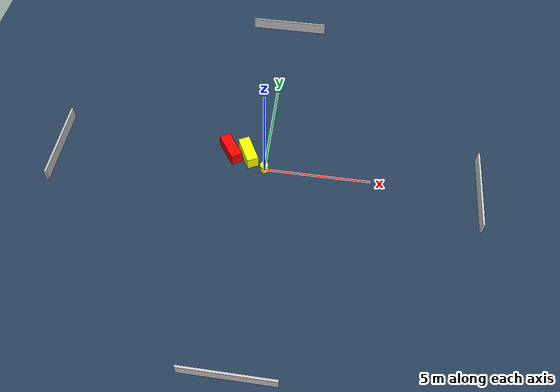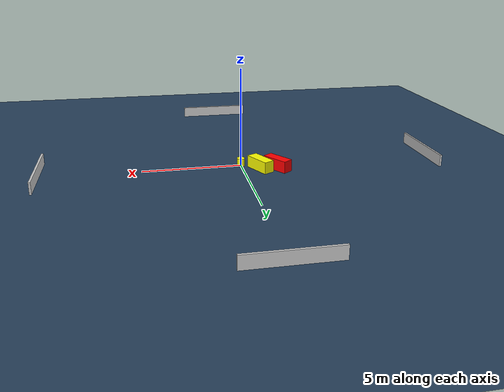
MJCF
<?xml version="1.0" ?>
<mujoco model="generated_environment">
  <option timestep="0.01" integrator="RK4" cone="elliptic"/>
  <default>
    <geom density="1"/>
  </default>
  <asset>
    <texture builtin="gradient" height="3072" name="skybox" rgb1="0.3 0.5 0.7" rgb2="0 0 0" type="skybox" width="512"/>
    <texture builtin="checker" height="300" name="groundplane" rgb1="0.2 0.3 0.4" rgb2="0.1 0.2 0.3" type="2d" width="300"/>
    <material name="groundplane" reflectance="0.2" texrepeat="5 5" texture="groundplane"/>
  </asset>
  <worldbody>
    <light dir="0 0 -1" directional="true" pos="0 0 1.5"/>
    <geom condim="3" friction="0.5 0.005 0.001" material="groundplane" name="floor" pos="0 0 0" size="0 0 0.05" type="plane"/>
    <body name="walls">
      <geom name="wall_1" condim="4" pos="-10.0 0.0 0.3" rgba="0.800000011920929 0.800000011920929 0.800000011920929 1.0" size="0.05 2.0 0.3" type="box"/>
      <geom name="wall_2" condim="4" pos="10.0 0.0 0.3" rgba="0.800000011920929 0.800000011920929 0.800000011920929 1.0" size="0.05 2.0 0.3" type="box"/>
      <geom name="wall_3" condim="4" pos="0.0 -10.0 0.3" rgba="0.800000011920929 0.800000011920929 0.800000011920929 1.0" size="2.0 0.05 0.3" type="box"/>
      <geom name="wall_4" condim="4" pos="0.0 10.0 0.3" rgba="0.800000011920929 0.800000011920929 0.800000011920929 1.0" size="2.0 0.05 0.3" type="box"/>
    </body>
    <body name="robot">
      <joint name="joint_x" type="slide" pos="0 0 0" axis="1 0 0"/>
      <joint name="joint_y" type="slide" pos="0 0 0" axis="0 1 0"/>
      <geom name="robot" type="cylinder" pos="0.0 0.0 0.2" size="0.2 0.2 0.0" mass="5.0" friction="1.0 0.005 0.0001" condim="4" rgba="1.0 1.0 0.0 1.0"/>
    </body>
    <body name="obstacle_1_movable">
      <geom name="obstacle_1_movable" condim="4" pos="-0.8720334890552585 0.7098401563373615 0.3" euler="0 0 27.189100597888682" friction="0.0 0.005 0.001" rgba="1.0 1.0 0.0 1.0" size="0.2792204183253476 0.691418035770679 0.3" type="box" mass="0.1"/>
      <joint type="free"/>
    </body>
    <body name="obstacle_2_static">
      <geom name="obstacle_2_static" condim="4" pos="-1.7351441335785818 0.8096747541975979 0.3" euler="0 0 34.762349143941194" friction="0.0 0.005 0.001" rgba="1.0 0.0 0.0 1.0" size="0.26802426534783375 0.6976898589963498 0.3" type="box"/>
    </body>
  </worldbody>
  <actuator>
    <motor name="actuator_x" joint="joint_x" gear="1" ctrlrange="-1 1"/>
    <motor name="actuator_y" joint="joint_y" gear="1" ctrlrange="-1 1"/>
  </actuator>
</mujoco>
